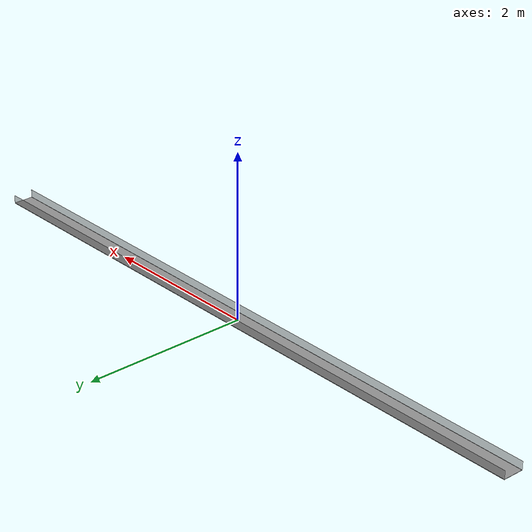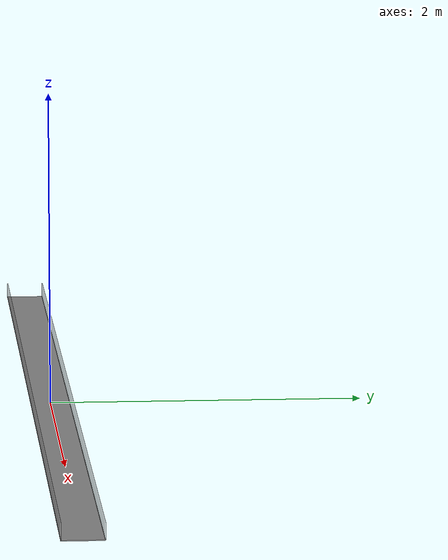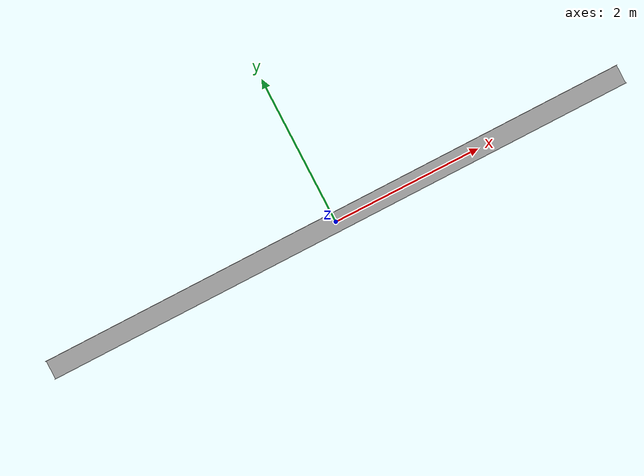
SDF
<?xml version="1.0" ?>
<sdf version="1.5">
  <model name="mbzirc_uav_assembly_wall">
    <static>true</static>
    <link name="link">
      <pose>0 0 0 0 0 0</pose>

      <visual name="visual_top_plate">
        <pose>0 0 0.0025 0 0 0</pose>
        <geometry>
          <box>
            <size>8.0 0.25 0.005</size>
          </box>
        </geometry>
        <material>
          <script>
            <name>Gazebo/Grey</name>
            <uri>file://media/materials/scripts/gazebo.material</uri>
          </script>
        </material>
      </visual>

      <collision name="collision_front_channel">
        <pose>0 0.125 0.0525 0 0 0</pose>
        <geometry>
          <box>
            <size>8.0 0.005 0.1</size>
          </box>
        </geometry>
      </collision>

      <visual name="visual_front_channel">
        <pose>0 0.125 0.0525 0 0 0</pose>
        <geometry>
          <box>
            <size>8.0 0.005 0.1</size>
          </box>
        </geometry>
        <material>
          <script>
            <name>Gazebo/GreyTransparent</name>
            <uri>file://media/materials/scripts/gazebo.material</uri>
          </script>
        </material>
      </visual>

      <collision name="collision_back_channel">
        <pose>0 -0.125 0.0525 0 0 0</pose>
        <geometry>
          <box>
            <size>8.0 0.005 0.1</size>
          </box>
        </geometry>
      </collision>

      <visual name="visual_back_channel">
        <pose>0 -0.125 0.0525 0 0 0</pose>
        <geometry>
          <box>
            <size>8.0 0.005 0.1</size>
          </box>
        </geometry>
        <material>
          <script>
            <name>Gazebo/GreyTransparent</name>
            <uri>file://media/materials/scripts/gazebo.material</uri>
          </script>
        </material>
      </visual>

    </link>
  </model>
</sdf>
